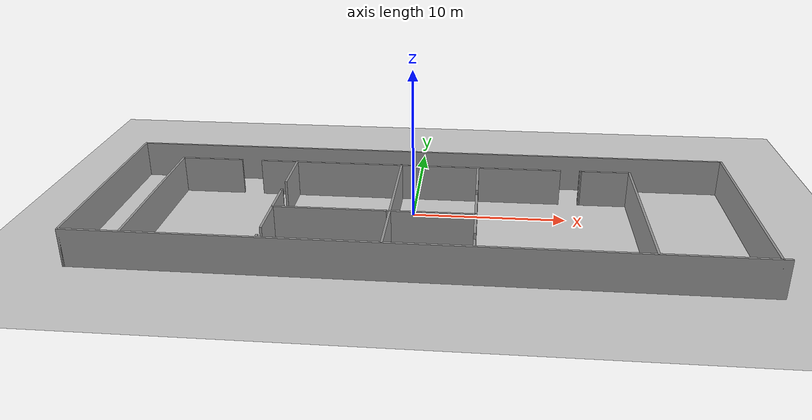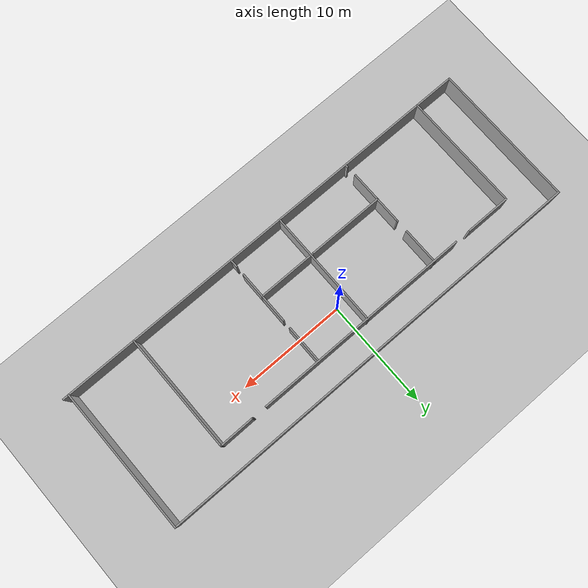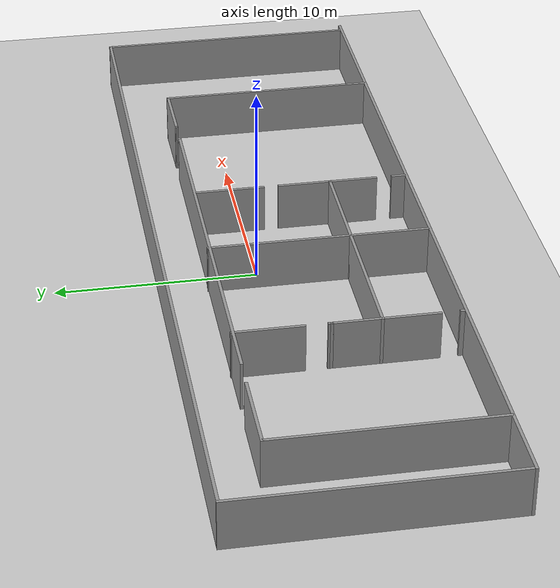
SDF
<sdf version="1.6">
 <world name="default">
  <light name="sun" type="directional">
   <pose>0 0 10 0 -0 0</pose>
   <diffuse>0.8 0.8 0.8 1</diffuse>
   <specular>0.1 0.1 0.1 1</specular>
   <attenuation>
    <range>1000</range>
    <constant>0.9</constant>
    <linear>0.01</linear>
    <quadratic>0.001</quadratic>
   </attenuation>
   <direction>-0.5 0.5 -1</direction>
  </light>
  <model name="ground_plane">
   <static>1</static>
   <link name="link">
    <collision name="collision">
     <geometry><plane><normal>0 0 1</normal><size>100 100</size></plane></geometry>
     <surface><friction><ode><mu>100</mu><mu2>50</mu2></ode></friction></surface>
    </collision>
    <visual name="visual">
     <cast_shadows>0</cast_shadows>
     <geometry><plane><normal>0 0 1</normal><size>100 100</size></plane></geometry>
     <material>
      <script><uri>file://media/materials/scripts/gazebo.material</uri><name>Gazebo/Grey</name></script>
     </material>
    </visual>
   </link>
  </model>
  <gravity>0 0 -9.8</gravity>
  <magnetic_field>6e-06 2.3e-05 -4.2e-05</magnetic_field>
  <atmosphere type="adiabatic"/>
  <physics name="default_physics" default="0" type="ode">
   <max_step_size>0.001</max_step_size>
   <real_time_factor>1</real_time_factor>
   <real_time_update_rate>1000</real_time_update_rate>
  </physics>
  <scene><ambient>0.4 0.4 0.4 1</ambient><background>0.7 0.7 0.7 1</background><shadows>1</shadows></scene>
  <spherical_coordinates>
   <surface_model>EARTH_WGS84</surface_model>
   <latitude_deg>0</latitude_deg>
   <longitude_deg>0</longitude_deg>
   <elevation>0</elevation>
   <heading_deg>0</heading_deg>
  </spherical_coordinates>
  <model name="rooms_4">
   <pose>0.681717 -1.75467 0 0 -0 0</pose>
   <link name="Wall_10">
    <collision name="Wall_10_Collision">
     <geometry><box><size>4.25 0.15 2.5</size></box></geometry>
     <pose>0 0 1.25 0 -0 0</pose>
    </collision>
    <visual name="Wall_10_Visual">
     <pose>0 0 1.25 0 -0 0</pose>
     <geometry><box><size>4.25 0.15 2.5</size></box></geometry>
     <material>
      <script><uri>file://media/materials/scripts/gazebo.material</uri><name>Gazebo/Grey</name></script>
      <ambient>1 1 1 1</ambient>
     </material>
    </visual>
    <pose>-14.943 4.24335 0 0 -0 0</pose>
   </link>
   <link name="Wall_12">
    <collision name="Wall_12_Collision">
     <geometry><box><size>20.5 0.15 2.5</size></box></geometry>
     <pose>0 0 1.25 0 -0 0</pose>
    </collision>
    <visual name="Wall_12_Visual">
     <pose>0 0 1.25 0 -0 0</pose>
     <geometry><box><size>20.5 0.15 2.5</size></box></geometry>
     <material>
      <script><uri>file://media/materials/scripts/gazebo.material</uri><name>Gazebo/Grey</name></script>
      <ambient>1 1 1 1</ambient>
     </material>
    </visual>
    <pose>-1.20046 4.21946 0 0 -0 0</pose>
   </link>
   <link name="Wall_14">
    <collision name="Wall_14_Collision">
     <geometry><box><size>3.37745 0.15 2.5</size></box></geometry>
     <pose>0 0 1.25 0 -0 0</pose>
    </collision>
    <visual name="Wall_14_Visual">
     <pose>0 0 1.25 0 -0 0</pose>
     <geometry><box><size>3.37745 0.15 2.5</size></box></geometry>
     <material>
      <script><uri>file://media/materials/scripts/gazebo.material</uri><name>Gazebo/Grey</name></script>
      <ambient>1 1 1 1</ambient>
     </material>
    </visual>
    <pose>11.9934 4.2314 0 0 -0 0.007402</pose>
   </link>
   <link name="Wall_16">
    <collision name="Wall_16_Collision">
     <geometry><box><size>11 0.15 2.5</size></box></geometry>
     <pose>0 0 1.25 0 -0 0</pose>
    </collision>
    <visual name="Wall_16_Visual">
     <pose>0 0 1.25 0 -0 0</pose>
     <geometry><box><size>11 0.15 2.5</size></box></geometry>
     <material>
      <script><uri>file://media/materials/scripts/gazebo.material</uri><name>Gazebo/Grey</name></script>
      <ambient>1 1 1 1</ambient>
     </material>
    </visual>
    <pose>-1.70711 -1.15485 0 0 0 -1.5708</pose>
   </link>
   <link name="Wall_18">
    <collision name="Wall_18_Collision">
     <geometry><box><size>3.5 0.15 2.5</size></box></geometry>
     <pose>0 0 1.25 0 -0 0</pose>
    </collision>
    <visual name="Wall_18_Visual">
     <pose>0 0 1.25 0 -0 0</pose>
     <geometry><box><size>3.5 0.15 2.5</size></box></geometry>
     <material>
      <script><uri>file://media/materials/scripts/gazebo.material</uri><name>Gazebo/Grey</name></script>
      <ambient>1 1 1 1</ambient>
     </material>
    </visual>
    <pose>-8.94928 2.59515 0 0 0 -1.5708</pose>
   </link>
   <link name="Wall_2">
    <collision name="Wall_2_Collision">
     <geometry><box><size>41.5004 0.15 2.5</size></box></geometry>
     <pose>0 0 1.25 0 -0 0</pose>
    </collision>
    <visual name="Wall_2_Visual">
     <pose>0 0 1.25 0 -0 0</pose>
     <geometry><box><size>41.5004 0.15 2.5</size></box></geometry>
     <material>
      <script><uri>file://media/materials/scripts/gazebo.material</uri><name>Gazebo/Grey</name></script>
      <ambient>1 1 1 1</ambient>
     </material>
    </visual>
    <pose>-1e-06 -6.675 0 0 -0 0</pose>
   </link>
   <link name="Wall_20">
    <collision name="Wall_20_Collision">
     <geometry><box><size>5.25 0.15 2.5</size></box></geometry>
     <pose>0 0 1.25 0 -0 0</pose>
    </collision>
    <visual name="Wall_20_Visual">
     <pose>0 0 1.25 0 -0 0</pose>
     <geometry><box><size>5.25 0.15 2.5</size></box></geometry>
     <material>
      <script><uri>file://media/materials/scripts/gazebo.material</uri><name>Gazebo/Grey</name></script>
      <ambient>1 1 1 1</ambient>
     </material>
    </visual>
    <pose>-8.95256 -2.90228 0 0 0 -1.5708</pose>
   </link>
   <link name="Wall_22">
    <collision name="Wall_22_Collision">
     <geometry><box><size>7.25 0.15 2.5</size></box></geometry>
     <pose>0 0 1.25 0 -0 0</pose>
    </collision>
    <visual name="Wall_22_Visual">
     <pose>0 0 1.25 0 -0 0</pose>
     <geometry><box><size>7.25 0.15 2.5</size></box></geometry>
     <material>
      <script><uri>file://media/materials/scripts/gazebo.material</uri><name>Gazebo/Grey</name></script>
      <ambient>1 1 1 1</ambient>
     </material>
    </visual>
    <pose>-5.40256 -2.71697 0 0 -0 0</pose>
   </link>
   <link name="Wall_24">
    <collision name="Wall_24_Collision">
     <geometry><box><size>0.25 0.15 2.5</size></box></geometry>
     <pose>0 0 1.25 0 -0 0</pose>
    </collision>
    <visual name="Wall_24_Visual">
     <pose>0 0 1.25 0 -0 0</pose>
     <geometry><box><size>0.25 0.15 2.5</size></box></geometry>
     <material>
      <script><uri>file://media/materials/scripts/gazebo.material</uri><name>Gazebo/Grey</name></script>
      <ambient>1 1 1 1</ambient>
     </material>
    </visual>
    <pose>-8.92581 -6.50161 0 0 -0 1.5708</pose>
   </link>
   <link name="Wall_26">
    <collision name="Wall_26_Collision">
     <geometry><box><size>0.25 0.15 2.5</size></box></geometry>
     <pose>0 0 1.25 0 -0 0</pose>
    </collision>
    <visual name="Wall_26_Visual">
     <pose>0 0 1.25 0 -0 0</pose>
     <geometry><box><size>0.25 0.15 2.5</size></box></geometry>
     <material>
      <script><uri>file://media/materials/scripts/gazebo.material</uri><name>Gazebo/Grey</name></script>
      <ambient>1 1 1 1</ambient>
     </material>
    </visual>
    <pose>-8.95256 -0.302276 0 0 -0 1.5708</pose>
   </link>
   <link name="Wall_30">
    <collision name="Wall_30_Collision">
     <geometry><box><size>5.5 0.15 2.5</size></box></geometry>
     <pose>0 0 1.25 0 -0 0</pose>
    </collision>
    <visual name="Wall_30_Visual">
     <pose>0 0 1.25 0 -0 0</pose>
     <geometry><box><size>5.5 0.15 2.5</size></box></geometry>
     <material>
      <script><uri>file://media/materials/scripts/gazebo.material</uri><name>Gazebo/Grey</name></script>
      <ambient>1 1 1 1</ambient>
     </material>
    </visual>
    <pose>0.822438 -2.71697 0 0 -0 0</pose>
   </link>
   <link name="Wall_31">
    <collision name="Wall_31_Collision">
     <geometry><box><size>2.75 0.15 2.5</size></box></geometry>
     <pose>0 0 1.25 0 -0 0</pose>
    </collision>
    <visual name="Wall_31_Visual">
     <pose>0 0 1.25 0 -0 0</pose>
     <geometry><box><size>2.75 0.15 2.5</size></box></geometry>
     <material>
      <script><uri>file://media/materials/scripts/gazebo.material</uri><name>Gazebo/Grey</name></script>
      <ambient>1 1 1 1</ambient>
     </material>
    </visual>
    <pose>3.49744 -1.41697 0 0 -0 1.5708</pose>
   </link>
   <link name="Wall_34">
    <collision name="Wall_34_Collision">
     <geometry><box><size>3.5 0.15 2.5</size></box></geometry>
     <pose>0 0 1.25 0 -0 0</pose>
    </collision>
    <visual name="Wall_34_Visual">
     <pose>0 0 1.25 0 -0 0</pose>
     <geometry><box><size>3.5 0.15 2.5</size></box></geometry>
     <material>
      <script><uri>file://media/materials/scripts/gazebo.material</uri><name>Gazebo/Grey</name></script>
      <ambient>1 1 1 1</ambient>
     </material>
    </visual>
    <pose>3.49682 2.41395 0 0 -0 1.5708</pose>
   </link>
   <link name="Wall_36">
    <collision name="Wall_36_Collision">
     <geometry><box><size>2.5 0.15 2.5</size></box></geometry>
     <pose>0 0 1.25 0 -0 0</pose>
    </collision>
    <visual name="Wall_36_Visual">
     <pose>0 0 1.25 0 -0 0</pose>
     <geometry><box><size>2.5 0.15 2.5</size></box></geometry>
     <material>
      <script><uri>file://media/materials/scripts/gazebo.material</uri><name>Gazebo/Grey</name></script>
      <ambient>1 1 1 1</ambient>
     </material>
    </visual>
    <pose>3.49744 -3.89196 0 0 0 -1.5708</pose>
   </link>
   <link name="Wall_38">
    <collision name="Wall_38_Collision">
     <geometry><box><size>0.75 0.15 2.5</size></box></geometry>
     <pose>0 0 1.25 0 -0 0</pose>
    </collision>
    <visual name="Wall_38_Visual">
     <pose>0 0 1.25 0 -0 0</pose>
     <geometry><box><size>0.75 0.15 2.5</size></box></geometry>
     <material>
      <script><uri>file://media/materials/scripts/gazebo.material</uri><name>Gazebo/Grey</name></script>
      <ambient>1 1 1 1</ambient>
     </material>
    </visual>
    <pose>3.49682 -6.27093 0 0 0 -1.5708</pose>
   </link>
   <link name="Wall_40">
    <collision name="Wall_40_Collision">
     <geometry><box><size>0.15 0.15 2.5</size></box></geometry>
     <pose>0 0 1.25 0 -0 0</pose>
    </collision>
    <visual name="Wall_40_Visual">
     <pose>0 0 1.25 0 -0 0</pose>
     <geometry><box><size>0.15 0.15 2.5</size></box></geometry>
     <material>
      <script><uri>file://media/materials/scripts/gazebo.material</uri><name>Gazebo/Grey</name></script>
      <ambient>1 1 1 1</ambient>
     </material>
    </visual>
    <pose>10.3797 4.21946 0 0 -0 0</pose>
   </link>
   <link name="Wall_42">
    <collision name="Wall_42_Collision">
     <geometry><box><size>0.15 0.15 2.5</size></box></geometry>
     <pose>0 0 1.25 0 -0 0</pose>
    </collision>
    <visual name="Wall_42_Visual">
     <pose>0 0 1.25 0 -0 0</pose>
     <geometry><box><size>0.15 0.15 2.5</size></box></geometry>
     <material>
      <script><uri>file://media/materials/scripts/gazebo.material</uri><name>Gazebo/Grey</name></script>
      <ambient>1 1 1 1</ambient>
     </material>
    </visual>
    <pose>10.3797 4.21946 0 0 -0 0</pose>
   </link>
   <link name="Wall_44">
    <collision name="Wall_44_Collision">
     <geometry><box><size>0.15 0.15 2.5</size></box></geometry>
     <pose>0 0 1.25 0 -0 0</pose>
    </collision>
    <visual name="Wall_44_Visual">
     <pose>0 0 1.25 0 -0 0</pose>
     <geometry><box><size>0.15 0.15 2.5</size></box></geometry>
     <material>
      <script><uri>file://media/materials/scripts/gazebo.material</uri><name>Gazebo/Grey</name></script>
      <ambient>1 1 1 1</ambient>
     </material>
    </visual>
    <pose>-8.95256 -0.352276 0 0 -0 0</pose>
   </link>
   <link name="Wall_45">
    <collision name="Wall_45_Collision">
     <geometry><box><size>0.15 0.15 2.5</size></box></geometry>
     <pose>0 0 1.25 0 -0 0</pose>
    </collision>
    <visual name="Wall_45_Visual">
     <pose>0 0 1.25 0 -0 0</pose>
     <geometry><box><size>0.15 0.15 2.5</size></box></geometry>
     <material>
      <script><uri>file://media/materials/scripts/gazebo.material</uri><name>Gazebo/Grey</name></script>
      <ambient>1 1 1 1</ambient>
     </material>
    </visual>
    <pose>-8.95256 -0.352276 0 0 -0 0</pose>
   </link>
   <link name="Wall_48">
    <collision name="Wall_48_Collision">
     <geometry><box><size>13.5 0.15 2.5</size></box></geometry>
     <pose>0 0 1.25 0 -0 0</pose>
    </collision>
    <visual name="Wall_48_Visual">
     <pose>0 0 1.25 0 -0 0</pose>
     <geometry><box><size>13.5 0.15 2.5</size></box></geometry>
     <material>
      <script><uri>file://media/materials/scripts/gazebo.material</uri><name>Gazebo/Grey</name></script>
      <ambient>1 1 1 1</ambient>
     </material>
    </visual>
    <pose>-20.675 0 0 0 -0 1.5708</pose>
   </link>
   <link name="Wall_49">
    <collision name="Wall_49_Collision">
     <geometry><box><size>41 0.15 2.5</size></box></geometry>
     <pose>0 0 1.25 0 -0 0</pose>
    </collision>
    <visual name="Wall_49_Visual">
     <pose>0 0 1.25 0 -0 0</pose>
     <geometry><box><size>41 0.15 2.5</size></box></geometry>
     <material>
      <script><uri>file://media/materials/scripts/gazebo.material</uri><name>Gazebo/Grey</name></script>
      <ambient>1 1 1 1</ambient>
     </material>
    </visual>
    <pose>-0.250001 6.675 0 0 -0 0</pose>
   </link>
   <link name="Wall_50">
    <collision name="Wall_50_Collision">
     <geometry><box><size>13.5 0.15 2.5</size></box></geometry>
     <pose>0 0 1.25 0 -0 0</pose>
    </collision>
    <visual name="Wall_50_Visual">
     <pose>0 0 1.25 0 -0 0</pose>
     <geometry><box><size>13.5 0.15 2.5</size></box></geometry>
     <material>
      <script><uri>file://media/materials/scripts/gazebo.material</uri><name>Gazebo/Grey</name></script>
      <ambient>1 1 1 1</ambient>
     </material>
    </visual>
    <pose>20.175 0 0 0 0 -1.5708</pose>
   </link>
   <link name="Wall_6">
    <collision name="Wall_6_Collision">
     <geometry><box><size>11 0.15 2.5</size></box></geometry>
     <pose>0 0 1.25 0 -0 0</pose>
    </collision>
    <visual name="Wall_6_Visual">
     <pose>0 0 1.25 0 -0 0</pose>
     <geometry><box><size>11 0.15 2.5</size></box></geometry>
     <material>
      <script><uri>file://media/materials/scripts/gazebo.material</uri><name>Gazebo/Grey</name></script>
      <ambient>1 1 1 1</ambient>
     </material>
    </visual>
    <pose>-16.993 -1.18165 0 0 -0 1.5708</pose>
   </link>
   <link name="Wall_8">
    <collision name="Wall_8_Collision">
     <geometry><box><size>11 0.15 2.5</size></box></geometry>
     <pose>0 0 1.25 0 -0 0</pose>
    </collision>
    <visual name="Wall_8_Visual">
     <pose>0 0 1.25 0 -0 0</pose>
     <geometry><box><size>11 0.15 2.5</size></box></geometry>
     <material>
      <script><uri>file://media/materials/scripts/gazebo.material</uri><name>Gazebo/Grey</name></script>
      <ambient>1 1 1 1</ambient>
     </material>
    </visual>
    <pose>13.607 -1.18165 0 0 0 -1.5708</pose>
   </link>
   <static>1</static>
  </model>
 </world>
</sdf>
